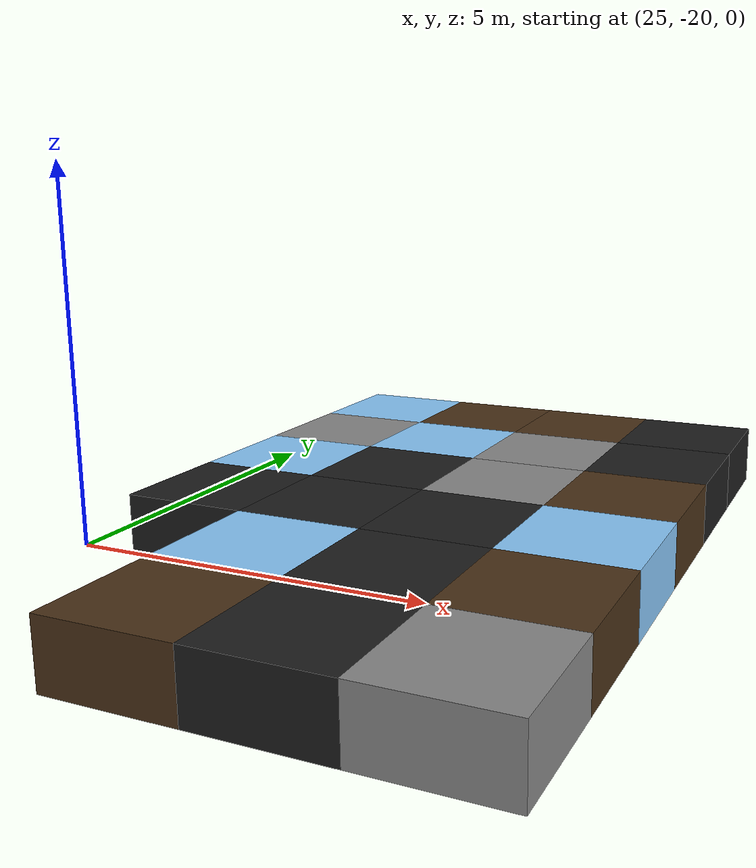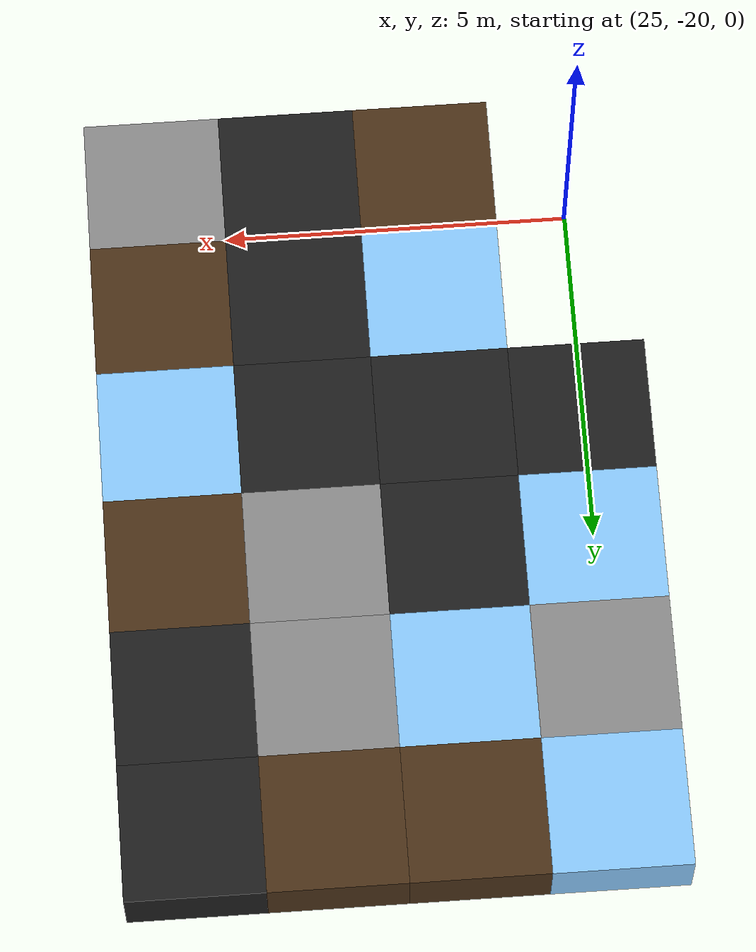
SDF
<sdf version="1.5">
 <world name="squares_example">
  <model name="tile_29_5">
   <static>true</static>
   <pose>27.000 -21.000 -0.500 0 0 0</pose>
   <link name="link">
    <collision name="col">
     <geometry><box><size>2.0 2.0 1.0</size></box></geometry>
     <surface>
      <friction>
       <ode><mu>0.6</mu><mu2>0.4</mu2><fdir1>1 0 0</fdir1><slip1>0.08</slip1><slip2>0.08</slip2></ode>
       <torsional>
        <coefficient>0.03</coefficient>
        <use_patch_radius>false</use_patch_radius>
        <surface_radius>0.12</surface_radius>
        <ode><slip>0.0</slip></ode>
       </torsional>
      </friction>
      <bounce><restitution_coefficient>0.0</restitution_coefficient><threshold>0.1</threshold></bounce>
      <contact>
       <ode><kp>1000000.0</kp><kd>10000.0</kd><max_vel>0.01</max_vel><min_depth>0.0</min_depth></ode>
      </contact>
     </surface>
    </collision>
    <visual name="visual">
     <geometry><box><size>2.0 2.0 1.0</size></box></geometry>
     <material>
      <diffuse>0.30 0.20 0.10 1</diffuse>
      <ambient>0 0 0 0</ambient>
      <specular>0 0 0 1</specular>
      <emissive>0 0 0 1</emissive>
     </material>
    </visual>
   </link>
  </model>
  <model name="tile_30_5">
   <static>true</static>
   <pose>29.000 -21.000 -0.500 0 0 0</pose>
   <link name="link">
    <collision name="col">
     <geometry><box><size>2.0 2.0 1.0</size></box></geometry>
     <surface>
      <friction>
       <ode><mu>0.4</mu><mu2>0.15</mu2><fdir1>1 0 0</fdir1><slip1>0.0</slip1><slip2>0.0</slip2></ode>
       <torsional>
        <coefficient>0.03</coefficient>
        <use_patch_radius>false</use_patch_radius>
        <surface_radius>0.12</surface_radius>
        <ode><slip>0.0</slip></ode>
       </torsional>
      </friction>
      <bounce><restitution_coefficient>0.0</restitution_coefficient><threshold>0.1</threshold></bounce>
      <contact>
       <ode><kp>1000000000.0</kp><kd>1000000.0</kd><max_vel>0.01</max_vel><min_depth>0.0</min_depth></ode>
      </contact>
     </surface>
    </collision>
    <visual name="visual">
     <geometry><box><size>2.0 2.0 1.0</size></box></geometry>
     <material>
      <diffuse>0.12 0.12 0.12 1</diffuse>
      <ambient>0 0 0 0</ambient>
      <specular>0 0 0 1</specular>
      <emissive>0 0 0 1</emissive>
     </material>
    </visual>
   </link>
  </model>
  <model name="tile_31_5">
   <static>true</static>
   <pose>31.000 -21.000 -0.500 0 0 0</pose>
   <link name="link">
    <collision name="col">
     <geometry><box><size>2.0 2.0 1.0</size></box></geometry>
     <surface>
      <friction>
       <ode><mu>0.8</mu><mu2>0.3</mu2><fdir1>1 0 0</fdir1><slip1>0.0</slip1><slip2>0.0</slip2></ode>
       <torsional>
        <coefficient>0.03</coefficient>
        <use_patch_radius>false</use_patch_radius>
        <surface_radius>0.12</surface_radius>
        <ode><slip>0.0</slip></ode>
       </torsional>
      </friction>
      <bounce><restitution_coefficient>0.0</restitution_coefficient><threshold>0.1</threshold></bounce>
      <contact>
       <ode><kp>10000000000.0</kp><kd>10000000.0</kd><max_vel>0.01</max_vel><min_depth>0.0</min_depth></ode>
      </contact>
     </surface>
    </collision>
    <visual name="visual">
     <geometry><box><size>2.0 2.0 1.0</size></box></geometry>
     <material>
      <diffuse>0.55 0.55 0.55 1</diffuse>
      <ambient>0 0 0 0</ambient>
      <specular>0 0 0 1</specular>
      <emissive>0 0 0 1</emissive>
     </material>
    </visual>
   </link>
  </model>
  <model name="tile_29_6">
   <static>true</static>
   <pose>27.000 -19.000 -0.500 0 0 0</pose>
   <link name="link">
    <collision name="col">
     <geometry><box><size>2.0 2.0 1.0</size></box></geometry>
     <surface>
      <friction>
       <ode><mu>0.03</mu><mu2>0.02</mu2><fdir1>1 0 0</fdir1><slip1>0.03</slip1><slip2>0.03</slip2></ode>
       <torsional>
        <coefficient>0.005</coefficient>
        <use_patch_radius>false</use_patch_radius>
        <surface_radius>0.12</surface_radius>
        <ode><slip>0.01</slip></ode>
       </torsional>
      </friction>
      <bounce><restitution_coefficient>0.0</restitution_coefficient><threshold>0.1</threshold></bounce>
      <contact>
       <ode><kp>10000000.0</kp><kd>1000.0</kd><max_vel>0.01</max_vel><min_depth>0.0</min_depth></ode>
      </contact>
     </surface>
    </collision>
    <visual name="visual">
     <geometry><box><size>2.0 2.0 1.0</size></box></geometry>
     <material>
      <diffuse>0.55 0.80 1.00 1</diffuse>
      <ambient>0 0 0 0</ambient>
      <specular>0 0 0 1</specular>
      <emissive>0 0 0 1</emissive>
     </material>
    </visual>
   </link>
  </model>
  <model name="tile_30_6">
   <static>true</static>
   <pose>29.000 -19.000 -0.500 0 0 0</pose>
   <link name="link">
    <collision name="col">
     <geometry><box><size>2.0 2.0 1.0</size></box></geometry>
     <surface>
      <friction>
       <ode><mu>0.4</mu><mu2>0.15</mu2><fdir1>1 0 0</fdir1><slip1>0.0</slip1><slip2>0.0</slip2></ode>
       <torsional>
        <coefficient>0.03</coefficient>
        <use_patch_radius>false</use_patch_radius>
        <surface_radius>0.12</surface_radius>
        <ode><slip>0.0</slip></ode>
       </torsional>
      </friction>
      <bounce><restitution_coefficient>0.0</restitution_coefficient><threshold>0.1</threshold></bounce>
      <contact>
       <ode><kp>1000000000.0</kp><kd>1000000.0</kd><max_vel>0.01</max_vel><min_depth>0.0</min_depth></ode>
      </contact>
     </surface>
    </collision>
    <visual name="visual">
     <geometry><box><size>2.0 2.0 1.0</size></box></geometry>
     <material>
      <diffuse>0.12 0.12 0.12 1</diffuse>
      <ambient>0 0 0 0</ambient>
      <specular>0 0 0 1</specular>
      <emissive>0 0 0 1</emissive>
     </material>
    </visual>
   </link>
  </model>
  <model name="tile_31_6">
   <static>true</static>
   <pose>31.000 -19.000 -0.500 0 0 0</pose>
   <link name="link">
    <collision name="col">
     <geometry><box><size>2.0 2.0 1.0</size></box></geometry>
     <surface>
      <friction>
       <ode><mu>0.6</mu><mu2>0.4</mu2><fdir1>1 0 0</fdir1><slip1>0.08</slip1><slip2>0.08</slip2></ode>
       <torsional>
        <coefficient>0.03</coefficient>
        <use_patch_radius>false</use_patch_radius>
        <surface_radius>0.12</surface_radius>
        <ode><slip>0.0</slip></ode>
       </torsional>
      </friction>
      <bounce><restitution_coefficient>0.0</restitution_coefficient><threshold>0.1</threshold></bounce>
      <contact>
       <ode><kp>1000000.0</kp><kd>10000.0</kd><max_vel>0.01</max_vel><min_depth>0.0</min_depth></ode>
      </contact>
     </surface>
    </collision>
    <visual name="visual">
     <geometry><box><size>2.0 2.0 1.0</size></box></geometry>
     <material>
      <diffuse>0.30 0.20 0.10 1</diffuse>
      <ambient>0 0 0 0</ambient>
      <specular>0 0 0 1</specular>
      <emissive>0 0 0 1</emissive>
     </material>
    </visual>
   </link>
  </model>
  <model name="tile_28_7">
   <static>true</static>
   <pose>25.000 -17.000 -0.500 0 0 0</pose>
   <link name="link">
    <collision name="col">
     <geometry><box><size>2.0 2.0 1.0</size></box></geometry>
     <surface>
      <friction>
       <ode><mu>0.4</mu><mu2>0.15</mu2><fdir1>1 0 0</fdir1><slip1>0.0</slip1><slip2>0.0</slip2></ode>
       <torsional>
        <coefficient>0.03</coefficient>
        <use_patch_radius>false</use_patch_radius>
        <surface_radius>0.12</surface_radius>
        <ode><slip>0.0</slip></ode>
       </torsional>
      </friction>
      <bounce><restitution_coefficient>0.0</restitution_coefficient><threshold>0.1</threshold></bounce>
      <contact>
       <ode><kp>1000000000.0</kp><kd>1000000.0</kd><max_vel>0.01</max_vel><min_depth>0.0</min_depth></ode>
      </contact>
     </surface>
    </collision>
    <visual name="visual">
     <geometry><box><size>2.0 2.0 1.0</size></box></geometry>
     <material>
      <diffuse>0.12 0.12 0.12 1</diffuse>
      <ambient>0 0 0 0</ambient>
      <specular>0 0 0 1</specular>
      <emissive>0 0 0 1</emissive>
     </material>
    </visual>
   </link>
  </model>
  <model name="tile_29_7">
   <static>true</static>
   <pose>27.000 -17.000 -0.500 0 0 0</pose>
   <link name="link">
    <collision name="col">
     <geometry><box><size>2.0 2.0 1.0</size></box></geometry>
     <surface>
      <friction>
       <ode><mu>0.4</mu><mu2>0.15</mu2><fdir1>1 0 0</fdir1><slip1>0.0</slip1><slip2>0.0</slip2></ode>
       <torsional>
        <coefficient>0.03</coefficient>
        <use_patch_radius>false</use_patch_radius>
        <surface_radius>0.12</surface_radius>
        <ode><slip>0.0</slip></ode>
       </torsional>
      </friction>
      <bounce><restitution_coefficient>0.0</restitution_coefficient><threshold>0.1</threshold></bounce>
      <contact>
       <ode><kp>1000000000.0</kp><kd>1000000.0</kd><max_vel>0.01</max_vel><min_depth>0.0</min_depth></ode>
      </contact>
     </surface>
    </collision>
    <visual name="visual">
     <geometry><box><size>2.0 2.0 1.0</size></box></geometry>
     <material>
      <diffuse>0.12 0.12 0.12 1</diffuse>
      <ambient>0 0 0 0</ambient>
      <specular>0 0 0 1</specular>
      <emissive>0 0 0 1</emissive>
     </material>
    </visual>
   </link>
  </model>
  <model name="tile_30_7">
   <static>true</static>
   <pose>29.000 -17.000 -0.500 0 0 0</pose>
   <link name="link">
    <collision name="col">
     <geometry><box><size>2.0 2.0 1.0</size></box></geometry>
     <surface>
      <friction>
       <ode><mu>0.4</mu><mu2>0.15</mu2><fdir1>1 0 0</fdir1><slip1>0.0</slip1><slip2>0.0</slip2></ode>
       <torsional>
        <coefficient>0.03</coefficient>
        <use_patch_radius>false</use_patch_radius>
        <surface_radius>0.12</surface_radius>
        <ode><slip>0.0</slip></ode>
       </torsional>
      </friction>
      <bounce><restitution_coefficient>0.0</restitution_coefficient><threshold>0.1</threshold></bounce>
      <contact>
       <ode><kp>1000000000.0</kp><kd>1000000.0</kd><max_vel>0.01</max_vel><min_depth>0.0</min_depth></ode>
      </contact>
     </surface>
    </collision>
    <visual name="visual">
     <geometry><box><size>2.0 2.0 1.0</size></box></geometry>
     <material>
      <diffuse>0.12 0.12 0.12 1</diffuse>
      <ambient>0 0 0 0</ambient>
      <specular>0 0 0 1</specular>
      <emissive>0 0 0 1</emissive>
     </material>
    </visual>
   </link>
  </model>
  <model name="tile_31_7">
   <static>true</static>
   <pose>31.000 -17.000 -0.500 0 0 0</pose>
   <link name="link">
    <collision name="col">
     <geometry><box><size>2.0 2.0 1.0</size></box></geometry>
     <surface>
      <friction>
       <ode><mu>0.03</mu><mu2>0.02</mu2><fdir1>1 0 0</fdir1><slip1>0.03</slip1><slip2>0.03</slip2></ode>
       <torsional>
        <coefficient>0.005</coefficient>
        <use_patch_radius>false</use_patch_radius>
        <surface_radius>0.12</surface_radius>
        <ode><slip>0.01</slip></ode>
       </torsional>
      </friction>
      <bounce><restitution_coefficient>0.0</restitution_coefficient><threshold>0.1</threshold></bounce>
      <contact>
       <ode><kp>10000000.0</kp><kd>1000.0</kd><max_vel>0.01</max_vel><min_depth>0.0</min_depth></ode>
      </contact>
     </surface>
    </collision>
    <visual name="visual">
     <geometry><box><size>2.0 2.0 1.0</size></box></geometry>
     <material>
      <diffuse>0.55 0.80 1.00 1</diffuse>
      <ambient>0 0 0 0</ambient>
      <specular>0 0 0 1</specular>
      <emissive>0 0 0 1</emissive>
     </material>
    </visual>
   </link>
  </model>
  <model name="tile_28_8">
   <static>true</static>
   <pose>25.000 -15.000 -0.500 0 0 0</pose>
   <link name="link">
    <collision name="col">
     <geometry><box><size>2.0 2.0 1.0</size></box></geometry>
     <surface>
      <friction>
       <ode><mu>0.03</mu><mu2>0.02</mu2><fdir1>1 0 0</fdir1><slip1>0.03</slip1><slip2>0.03</slip2></ode>
       <torsional>
        <coefficient>0.005</coefficient>
        <use_patch_radius>false</use_patch_radius>
        <surface_radius>0.12</surface_radius>
        <ode><slip>0.01</slip></ode>
       </torsional>
      </friction>
      <bounce><restitution_coefficient>0.0</restitution_coefficient><threshold>0.1</threshold></bounce>
      <contact>
       <ode><kp>10000000.0</kp><kd>1000.0</kd><max_vel>0.01</max_vel><min_depth>0.0</min_depth></ode>
      </contact>
     </surface>
    </collision>
    <visual name="visual">
     <geometry><box><size>2.0 2.0 1.0</size></box></geometry>
     <material>
      <diffuse>0.55 0.80 1.00 1</diffuse>
      <ambient>0 0 0 0</ambient>
      <specular>0 0 0 1</specular>
      <emissive>0 0 0 1</emissive>
     </material>
    </visual>
   </link>
  </model>
  <model name="tile_29_8">
   <static>true</static>
   <pose>27.000 -15.000 -0.500 0 0 0</pose>
   <link name="link">
    <collision name="col">
     <geometry><box><size>2.0 2.0 1.0</size></box></geometry>
     <surface>
      <friction>
       <ode><mu>0.4</mu><mu2>0.15</mu2><fdir1>1 0 0</fdir1><slip1>0.0</slip1><slip2>0.0</slip2></ode>
       <torsional>
        <coefficient>0.03</coefficient>
        <use_patch_radius>false</use_patch_radius>
        <surface_radius>0.12</surface_radius>
        <ode><slip>0.0</slip></ode>
       </torsional>
      </friction>
      <bounce><restitution_coefficient>0.0</restitution_coefficient><threshold>0.1</threshold></bounce>
      <contact>
       <ode><kp>1000000000.0</kp><kd>1000000.0</kd><max_vel>0.01</max_vel><min_depth>0.0</min_depth></ode>
      </contact>
     </surface>
    </collision>
    <visual name="visual">
     <geometry><box><size>2.0 2.0 1.0</size></box></geometry>
     <material>
      <diffuse>0.12 0.12 0.12 1</diffuse>
      <ambient>0 0 0 0</ambient>
      <specular>0 0 0 1</specular>
      <emissive>0 0 0 1</emissive>
     </material>
    </visual>
   </link>
  </model>
  <model name="tile_30_8">
   <static>true</static>
   <pose>29.000 -15.000 -0.500 0 0 0</pose>
   <link name="link">
    <collision name="col">
     <geometry><box><size>2.0 2.0 1.0</size></box></geometry>
     <surface>
      <friction>
       <ode><mu>0.8</mu><mu2>0.3</mu2><fdir1>1 0 0</fdir1><slip1>0.0</slip1><slip2>0.0</slip2></ode>
       <torsional>
        <coefficient>0.03</coefficient>
        <use_patch_radius>false</use_patch_radius>
        <surface_radius>0.12</surface_radius>
        <ode><slip>0.0</slip></ode>
       </torsional>
      </friction>
      <bounce><restitution_coefficient>0.0</restitution_coefficient><threshold>0.1</threshold></bounce>
      <contact>
       <ode><kp>10000000000.0</kp><kd>10000000.0</kd><max_vel>0.01</max_vel><min_depth>0.0</min_depth></ode>
      </contact>
     </surface>
    </collision>
    <visual name="visual">
     <geometry><box><size>2.0 2.0 1.0</size></box></geometry>
     <material>
      <diffuse>0.55 0.55 0.55 1</diffuse>
      <ambient>0 0 0 0</ambient>
      <specular>0 0 0 1</specular>
      <emissive>0 0 0 1</emissive>
     </material>
    </visual>
   </link>
  </model>
  <model name="tile_31_8">
   <static>true</static>
   <pose>31.000 -15.000 -0.500 0 0 0</pose>
   <link name="link">
    <collision name="col">
     <geometry><box><size>2.0 2.0 1.0</size></box></geometry>
     <surface>
      <friction>
       <ode><mu>0.6</mu><mu2>0.4</mu2><fdir1>1 0 0</fdir1><slip1>0.08</slip1><slip2>0.08</slip2></ode>
       <torsional>
        <coefficient>0.03</coefficient>
        <use_patch_radius>false</use_patch_radius>
        <surface_radius>0.12</surface_radius>
        <ode><slip>0.0</slip></ode>
       </torsional>
      </friction>
      <bounce><restitution_coefficient>0.0</restitution_coefficient><threshold>0.1</threshold></bounce>
      <contact>
       <ode><kp>1000000.0</kp><kd>10000.0</kd><max_vel>0.01</max_vel><min_depth>0.0</min_depth></ode>
      </contact>
     </surface>
    </collision>
    <visual name="visual">
     <geometry><box><size>2.0 2.0 1.0</size></box></geometry>
     <material>
      <diffuse>0.30 0.20 0.10 1</diffuse>
      <ambient>0 0 0 0</ambient>
      <specular>0 0 0 1</specular>
      <emissive>0 0 0 1</emissive>
     </material>
    </visual>
   </link>
  </model>
  <model name="tile_28_9">
   <static>true</static>
   <pose>25.000 -13.000 -0.500 0 0 0</pose>
   <link name="link">
    <collision name="col">
     <geometry><box><size>2.0 2.0 1.0</size></box></geometry>
     <surface>
      <friction>
       <ode><mu>0.8</mu><mu2>0.3</mu2><fdir1>1 0 0</fdir1><slip1>0.0</slip1><slip2>0.0</slip2></ode>
       <torsional>
        <coefficient>0.03</coefficient>
        <use_patch_radius>false</use_patch_radius>
        <surface_radius>0.12</surface_radius>
        <ode><slip>0.0</slip></ode>
       </torsional>
      </friction>
      <bounce><restitution_coefficient>0.0</restitution_coefficient><threshold>0.1</threshold></bounce>
      <contact>
       <ode><kp>10000000000.0</kp><kd>10000000.0</kd><max_vel>0.01</max_vel><min_depth>0.0</min_depth></ode>
      </contact>
     </surface>
    </collision>
    <visual name="visual">
     <geometry><box><size>2.0 2.0 1.0</size></box></geometry>
     <material>
      <diffuse>0.55 0.55 0.55 1</diffuse>
      <ambient>0 0 0 0</ambient>
      <specular>0 0 0 1</specular>
      <emissive>0 0 0 1</emissive>
     </material>
    </visual>
   </link>
  </model>
  <model name="tile_29_9">
   <static>true</static>
   <pose>27.000 -13.000 -0.500 0 0 0</pose>
   <link name="link">
    <collision name="col">
     <geometry><box><size>2.0 2.0 1.0</size></box></geometry>
     <surface>
      <friction>
       <ode><mu>0.03</mu><mu2>0.02</mu2><fdir1>1 0 0</fdir1><slip1>0.03</slip1><slip2>0.03</slip2></ode>
       <torsional>
        <coefficient>0.005</coefficient>
        <use_patch_radius>false</use_patch_radius>
        <surface_radius>0.12</surface_radius>
        <ode><slip>0.01</slip></ode>
       </torsional>
      </friction>
      <bounce><restitution_coefficient>0.0</restitution_coefficient><threshold>0.1</threshold></bounce>
      <contact>
       <ode><kp>10000000.0</kp><kd>1000.0</kd><max_vel>0.01</max_vel><min_depth>0.0</min_depth></ode>
      </contact>
     </surface>
    </collision>
    <visual name="visual">
     <geometry><box><size>2.0 2.0 1.0</size></box></geometry>
     <material>
      <diffuse>0.55 0.80 1.00 1</diffuse>
      <ambient>0 0 0 0</ambient>
      <specular>0 0 0 1</specular>
      <emissive>0 0 0 1</emissive>
     </material>
    </visual>
   </link>
  </model>
  <model name="tile_30_9">
   <static>true</static>
   <pose>29.000 -13.000 -0.500 0 0 0</pose>
   <link name="link">
    <collision name="col">
     <geometry><box><size>2.0 2.0 1.0</size></box></geometry>
     <surface>
      <friction>
       <ode><mu>0.8</mu><mu2>0.3</mu2><fdir1>1 0 0</fdir1><slip1>0.0</slip1><slip2>0.0</slip2></ode>
       <torsional>
        <coefficient>0.03</coefficient>
        <use_patch_radius>false</use_patch_radius>
        <surface_radius>0.12</surface_radius>
        <ode><slip>0.0</slip></ode>
       </torsional>
      </friction>
      <bounce><restitution_coefficient>0.0</restitution_coefficient><threshold>0.1</threshold></bounce>
      <contact>
       <ode><kp>10000000000.0</kp><kd>10000000.0</kd><max_vel>0.01</max_vel><min_depth>0.0</min_depth></ode>
      </contact>
     </surface>
    </collision>
    <visual name="visual">
     <geometry><box><size>2.0 2.0 1.0</size></box></geometry>
     <material>
      <diffuse>0.55 0.55 0.55 1</diffuse>
      <ambient>0 0 0 0</ambient>
      <specular>0 0 0 1</specular>
      <emissive>0 0 0 1</emissive>
     </material>
    </visual>
   </link>
  </model>
  <model name="tile_31_9">
   <static>true</static>
   <pose>31.000 -13.000 -0.500 0 0 0</pose>
   <link name="link">
    <collision name="col">
     <geometry><box><size>2.0 2.0 1.0</size></box></geometry>
     <surface>
      <friction>
       <ode><mu>0.4</mu><mu2>0.15</mu2><fdir1>1 0 0</fdir1><slip1>0.0</slip1><slip2>0.0</slip2></ode>
       <torsional>
        <coefficient>0.03</coefficient>
        <use_patch_radius>false</use_patch_radius>
        <surface_radius>0.12</surface_radius>
        <ode><slip>0.0</slip></ode>
       </torsional>
      </friction>
      <bounce><restitution_coefficient>0.0</restitution_coefficient><threshold>0.1</threshold></bounce>
      <contact>
       <ode><kp>1000000000.0</kp><kd>1000000.0</kd><max_vel>0.01</max_vel><min_depth>0.0</min_depth></ode>
      </contact>
     </surface>
    </collision>
    <visual name="visual">
     <geometry><box><size>2.0 2.0 1.0</size></box></geometry>
     <material>
      <diffuse>0.12 0.12 0.12 1</diffuse>
      <ambient>0 0 0 0</ambient>
      <specular>0 0 0 1</specular>
      <emissive>0 0 0 1</emissive>
     </material>
    </visual>
   </link>
  </model>
  <model name="tile_28_10">
   <static>true</static>
   <pose>25.000 -11.000 -0.500 0 0 0</pose>
   <link name="link">
    <collision name="col">
     <geometry><box><size>2.0 2.0 1.0</size></box></geometry>
     <surface>
      <friction>
       <ode><mu>0.03</mu><mu2>0.02</mu2><fdir1>1 0 0</fdir1><slip1>0.03</slip1><slip2>0.03</slip2></ode>
       <torsional>
        <coefficient>0.005</coefficient>
        <use_patch_radius>false</use_patch_radius>
        <surface_radius>0.12</surface_radius>
        <ode><slip>0.01</slip></ode>
       </torsional>
      </friction>
      <bounce><restitution_coefficient>0.0</restitution_coefficient><threshold>0.1</threshold></bounce>
      <contact>
       <ode><kp>10000000.0</kp><kd>1000.0</kd><max_vel>0.01</max_vel><min_depth>0.0</min_depth></ode>
      </contact>
     </surface>
    </collision>
    <visual name="visual">
     <geometry><box><size>2.0 2.0 1.0</size></box></geometry>
     <material>
      <diffuse>0.55 0.80 1.00 1</diffuse>
      <ambient>0 0 0 0</ambient>
      <specular>0 0 0 1</specular>
      <emissive>0 0 0 1</emissive>
     </material>
    </visual>
   </link>
  </model>
  <model name="tile_29_10">
   <static>true</static>
   <pose>27.000 -11.000 -0.500 0 0 0</pose>
   <link name="link">
    <collision name="col">
     <geometry><box><size>2.0 2.0 1.0</size></box></geometry>
     <surface>
      <friction>
       <ode><mu>0.6</mu><mu2>0.4</mu2><fdir1>1 0 0</fdir1><slip1>0.08</slip1><slip2>0.08</slip2></ode>
       <torsional>
        <coefficient>0.03</coefficient>
        <use_patch_radius>false</use_patch_radius>
        <surface_radius>0.12</surface_radius>
        <ode><slip>0.0</slip></ode>
       </torsional>
      </friction>
      <bounce><restitution_coefficient>0.0</restitution_coefficient><threshold>0.1</threshold></bounce>
      <contact>
       <ode><kp>1000000.0</kp><kd>10000.0</kd><max_vel>0.01</max_vel><min_depth>0.0</min_depth></ode>
      </contact>
     </surface>
    </collision>
    <visual name="visual">
     <geometry><box><size>2.0 2.0 1.0</size></box></geometry>
     <material>
      <diffuse>0.30 0.20 0.10 1</diffuse>
      <ambient>0 0 0 0</ambient>
      <specular>0 0 0 1</specular>
      <emissive>0 0 0 1</emissive>
     </material>
    </visual>
   </link>
  </model>
  <model name="tile_30_10">
   <static>true</static>
   <pose>29.000 -11.000 -0.500 0 0 0</pose>
   <link name="link">
    <collision name="col">
     <geometry><box><size>2.0 2.0 1.0</size></box></geometry>
     <surface>
      <friction>
       <ode><mu>0.6</mu><mu2>0.4</mu2><fdir1>1 0 0</fdir1><slip1>0.08</slip1><slip2>0.08</slip2></ode>
       <torsional>
        <coefficient>0.03</coefficient>
        <use_patch_radius>false</use_patch_radius>
        <surface_radius>0.12</surface_radius>
        <ode><slip>0.0</slip></ode>
       </torsional>
      </friction>
      <bounce><restitution_coefficient>0.0</restitution_coefficient><threshold>0.1</threshold></bounce>
      <contact>
       <ode><kp>1000000.0</kp><kd>10000.0</kd><max_vel>0.01</max_vel><min_depth>0.0</min_depth></ode>
      </contact>
     </surface>
    </collision>
    <visual name="visual">
     <geometry><box><size>2.0 2.0 1.0</size></box></geometry>
     <material>
      <diffuse>0.30 0.20 0.10 1</diffuse>
      <ambient>0 0 0 0</ambient>
      <specular>0 0 0 1</specular>
      <emissive>0 0 0 1</emissive>
     </material>
    </visual>
   </link>
  </model>
  <model name="tile_31_10">
   <static>true</static>
   <pose>31.000 -11.000 -0.500 0 0 0</pose>
   <link name="link">
    <collision name="col">
     <geometry><box><size>2.0 2.0 1.0</size></box></geometry>
     <surface>
      <friction>
       <ode><mu>0.4</mu><mu2>0.15</mu2><fdir1>1 0 0</fdir1><slip1>0.0</slip1><slip2>0.0</slip2></ode>
       <torsional>
        <coefficient>0.03</coefficient>
        <use_patch_radius>false</use_patch_radius>
        <surface_radius>0.12</surface_radius>
        <ode><slip>0.0</slip></ode>
       </torsional>
      </friction>
      <bounce><restitution_coefficient>0.0</restitution_coefficient><threshold>0.1</threshold></bounce>
      <contact>
       <ode><kp>1000000000.0</kp><kd>1000000.0</kd><max_vel>0.01</max_vel><min_depth>0.0</min_depth></ode>
      </contact>
     </surface>
    </collision>
    <visual name="visual">
     <geometry><box><size>2.0 2.0 1.0</size></box></geometry>
     <material>
      <diffuse>0.12 0.12 0.12 1</diffuse>
      <ambient>0 0 0 0</ambient>
      <specular>0 0 0 1</specular>
      <emissive>0 0 0 1</emissive>
     </material>
    </visual>
   </link>
  </model>
 </world>
</sdf>
